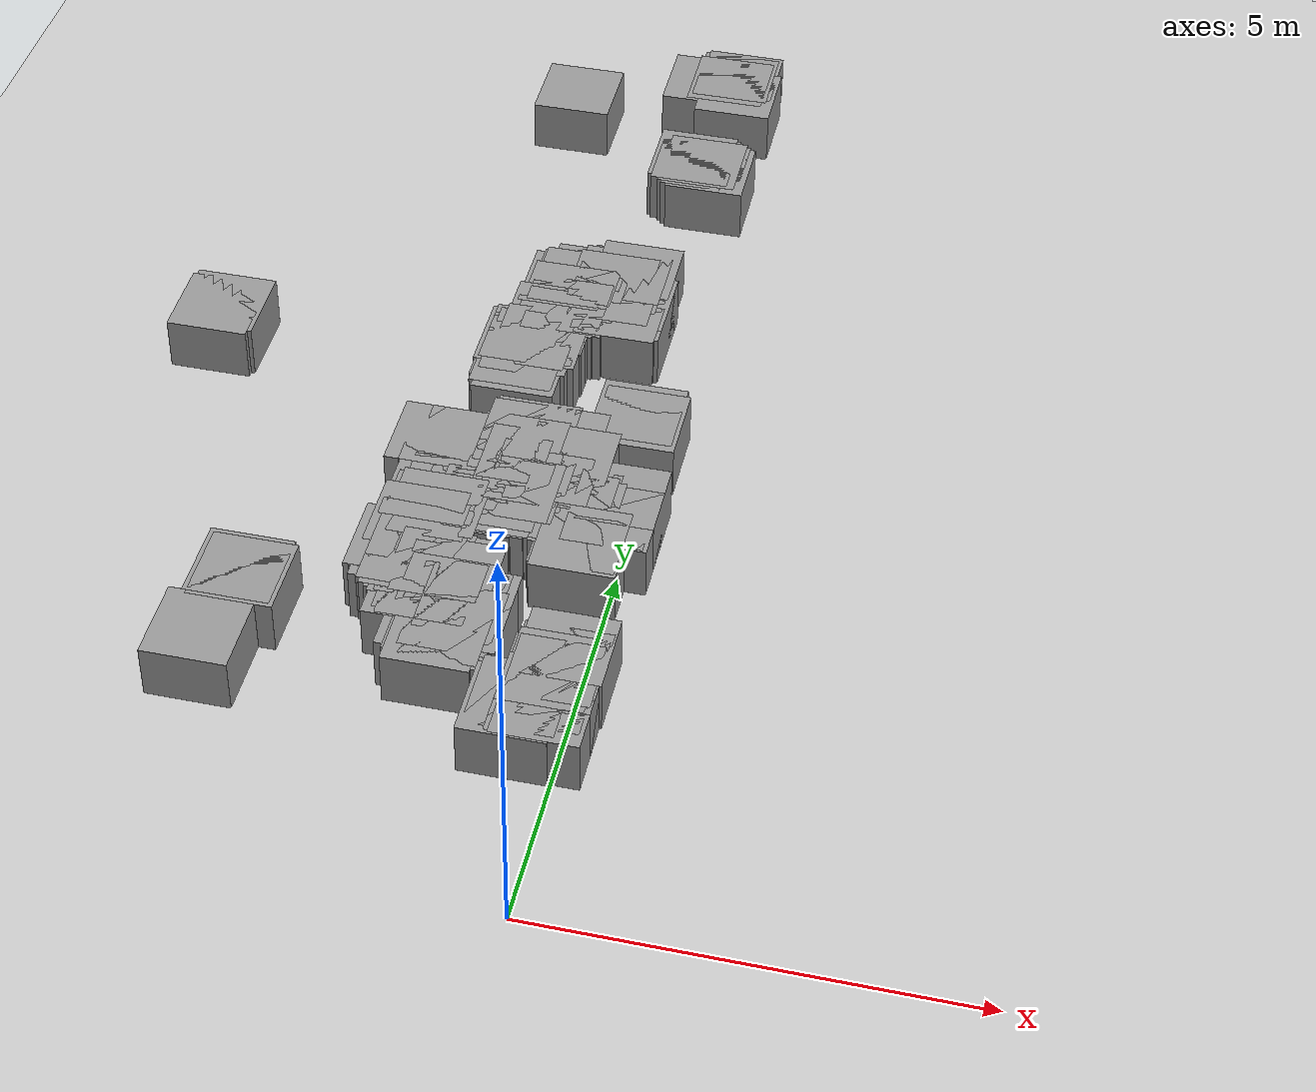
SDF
<sdf version="1.7">
 <world name="default">
  <model name="ground_plane">
   <static>1</static>
   <link name="link">
    <collision name="collision">
     <geometry><plane><normal>0 0 1</normal><size>100 100</size></plane></geometry>
     <surface>
      <contact><collide_bitmask>65535</collide_bitmask></contact>
      <friction><ode><mu>100</mu><mu2>50</mu2></ode></friction>
     </surface>
    </collision>
    <visual name="visual">
     <cast_shadows>0</cast_shadows>
     <geometry><plane><normal>0 0 1</normal><size>100 100</size></plane></geometry>
     <material>
      <script><uri>file://media/materials/scripts/gazebo.material</uri><name>Gazebo/Grey</name></script>
     </material>
    </visual>
   </link>
  </model>
  <include>
   <uri>model://unit_box</uri>
   <name>map_box_0</name>
   <pose>-0.39281 14.22254 0.15000 0.00000 0.00000 0.00000</pose>
   <scale>0.05000 0.05000 0.80000</scale>
  </include>
  <include>
   <uri>model://unit_box</uri>
   <name>map_box_1</name>
   <pose>-0.44281 14.17254 0.15000 0.00000 0.00000 0.00000</pose>
   <scale>0.05000 0.05000 0.80000</scale>
  </include>
  <include>
   <uri>model://unit_box</uri>
   <name>map_box_2</name>
   <pose>-0.49281 14.07254 0.15000 0.00000 0.00000 0.00000</pose>
   <scale>0.05000 0.05000 0.80000</scale>
  </include>
  <include>
   <uri>model://unit_box</uri>
   <name>map_box_3</name>
   <pose>-0.81781 14.02254 0.15000 0.00000 0.00000 0.00000</pose>
   <scale>0.10000 0.05000 0.80000</scale>
  </include>
  <include>
   <uri>model://unit_box</uri>
   <name>map_box_4</name>
   <pose>-0.34281 13.82254 0.15000 0.00000 0.00000 0.00000</pose>
   <scale>0.05000 0.05000 0.80000</scale>
  </include>
  <include>
   <uri>model://unit_box</uri>
   <name>map_box_5</name>
   <pose>-2.44281 13.42254 0.15000 0.00000 0.00000 0.00000</pose>
   <scale>0.05000 0.05000 0.80000</scale>
  </include>
  <include>
   <uri>model://unit_box</uri>
   <name>map_box_6</name>
   <pose>-0.64281 12.27254 0.15000 0.00000 0.00000 0.00000</pose>
   <scale>0.05000 0.05000 0.80000</scale>
  </include>
  <include>
   <uri>model://unit_box</uri>
   <name>map_box_7</name>
   <pose>-0.59281 12.22254 0.15000 0.00000 0.00000 0.00000</pose>
   <scale>0.05000 0.05000 0.80000</scale>
  </include>
  <include>
   <uri>model://unit_box</uri>
   <name>map_box_8</name>
   <pose>-0.49281 12.17254 0.15000 0.00000 0.00000 0.00000</pose>
   <scale>0.15000 0.05000 0.80000</scale>
  </include>
  <include>
   <uri>model://unit_box</uri>
   <name>map_box_9</name>
   <pose>-0.44281 12.12254 0.15000 0.00000 0.00000 0.00000</pose>
   <scale>0.05000 0.05000 0.80000</scale>
  </include>
  <include>
   <uri>model://unit_box</uri>
   <name>map_box_10</name>
   <pose>-0.36781 12.07254 0.15000 0.00000 0.00000 0.00000</pose>
   <scale>0.10000 0.05000 0.80000</scale>
  </include>
  <include>
   <uri>model://unit_box</uri>
   <name>map_box_11</name>
   <pose>-0.84281 9.77254 0.15000 0.00000 0.00000 0.00000</pose>
   <scale>0.15000 0.05000 0.80000</scale>
  </include>
  <include>
   <uri>model://unit_box</uri>
   <name>map_box_12</name>
   <pose>-1.39281 9.57254 0.15000 0.00000 0.00000 0.00000</pose>
   <scale>0.05000 0.25000 0.80000</scale>
  </include>
  <include>
   <uri>model://unit_box</uri>
   <name>map_box_13</name>
   <pose>-0.94281 9.64754 0.15000 0.00000 0.00000 0.00000</pose>
   <scale>0.05000 0.10000 0.80000</scale>
  </include>
  <include>
   <uri>model://unit_box</uri>
   <name>map_box_14</name>
   <pose>-1.04281 9.62254 0.15000 0.00000 0.00000 0.00000</pose>
   <scale>0.15000 0.05000 0.80000</scale>
  </include>
  <include>
   <uri>model://unit_box</uri>
   <name>map_box_15</name>
   <pose>-1.09281 9.52254 0.15000 0.00000 0.00000 0.00000</pose>
   <scale>0.05000 0.15000 0.80000</scale>
  </include>
  <include>
   <uri>model://unit_box</uri>
   <name>map_box_16</name>
   <pose>-1.14281 9.49754 0.15000 0.00000 0.00000 0.00000</pose>
   <scale>0.05000 0.10000 0.80000</scale>
  </include>
  <include>
   <uri>model://unit_box</uri>
   <name>map_box_17</name>
   <pose>-1.04281 9.47254 0.15000 0.00000 0.00000 0.00000</pose>
   <scale>0.05000 0.15000 0.80000</scale>
  </include>
  <include>
   <uri>model://unit_box</uri>
   <name>map_box_18</name>
   <pose>-1.51781 9.47254 0.15000 0.00000 0.00000 0.00000</pose>
   <scale>0.20000 0.05000 0.80000</scale>
  </include>
  <include>
   <uri>model://unit_box</uri>
   <name>map_box_19</name>
   <pose>-1.54281 9.42254 0.15000 0.00000 0.00000 0.00000</pose>
   <scale>0.05000 0.05000 0.80000</scale>
  </include>
  <include>
   <uri>model://unit_box</uri>
   <name>map_box_20</name>
   <pose>-1.64281 9.37254 0.15000 0.00000 0.00000 0.00000</pose>
   <scale>0.05000 0.05000 0.80000</scale>
  </include>
  <include>
   <uri>model://unit_box</uri>
   <name>map_box_21</name>
   <pose>-1.59281 9.29754 0.15000 0.00000 0.00000 0.00000</pose>
   <scale>0.05000 0.10000 0.80000</scale>
  </include>
  <include>
   <uri>model://unit_box</uri>
   <name>map_box_22</name>
   <pose>-0.99281 9.22254 0.15000 0.00000 0.00000 0.00000</pose>
   <scale>0.05000 0.05000 0.80000</scale>
  </include>
  <include>
   <uri>model://unit_box</uri>
   <name>map_box_23</name>
   <pose>-1.59281 9.17254 0.15000 0.00000 0.00000 0.00000</pose>
   <scale>0.05000 0.05000 0.80000</scale>
  </include>
  <include>
   <uri>model://unit_box</uri>
   <name>map_box_24</name>
   <pose>-0.79281 9.17254 0.15000 0.00000 0.00000 0.00000</pose>
   <scale>0.05000 0.05000 0.80000</scale>
  </include>
  <include>
   <uri>model://unit_box</uri>
   <name>map_box_25</name>
   <pose>-0.94281 9.12254 0.15000 0.00000 0.00000 0.00000</pose>
   <scale>0.05000 0.05000 0.80000</scale>
  </include>
  <include>
   <uri>model://unit_box</uri>
   <name>map_box_26</name>
   <pose>-1.46781 9.07254 0.15000 0.00000 0.00000 0.00000</pose>
   <scale>0.10000 0.05000 0.80000</scale>
  </include>
  <include>
   <uri>model://unit_box</uri>
   <name>map_box_27</name>
   <pose>-0.86781 9.07254 0.15000 0.00000 0.00000 0.00000</pose>
   <scale>0.10000 0.05000 0.80000</scale>
  </include>
  <include>
   <uri>model://unit_box</uri>
   <name>map_box_28</name>
   <pose>-1.59281 8.99754 0.15000 0.00000 0.00000 0.00000</pose>
   <scale>0.05000 0.10000 0.80000</scale>
  </include>
  <include>
   <uri>model://unit_box</uri>
   <name>map_box_29</name>
   <pose>-0.89281 8.99754 0.15000 0.00000 0.00000 0.00000</pose>
   <scale>0.05000 0.10000 0.80000</scale>
  </include>
  <include>
   <uri>model://unit_box</uri>
   <name>map_box_30</name>
   <pose>-0.79281 8.97254 0.15000 0.00000 0.00000 0.00000</pose>
   <scale>0.05000 0.05000 0.80000</scale>
  </include>
  <include>
   <uri>model://unit_box</uri>
   <name>map_box_31</name>
   <pose>-1.54281 8.89754 0.15000 0.00000 0.00000 0.00000</pose>
   <scale>0.05000 0.10000 0.80000</scale>
  </include>
  <include>
   <uri>model://unit_box</uri>
   <name>map_box_32</name>
   <pose>-0.84281 8.92254 0.15000 0.00000 0.00000 0.00000</pose>
   <scale>0.05000 0.05000 0.80000</scale>
  </include>
  <include>
   <uri>model://unit_box</uri>
   <name>map_box_33</name>
   <pose>-1.59281 8.84754 0.15000 0.00000 0.00000 0.00000</pose>
   <scale>0.05000 0.10000 0.80000</scale>
  </include>
  <include>
   <uri>model://unit_box</uri>
   <name>map_box_34</name>
   <pose>-1.49281 8.87254 0.15000 0.00000 0.00000 0.00000</pose>
   <scale>0.05000 0.05000 0.80000</scale>
  </include>
  <include>
   <uri>model://unit_box</uri>
   <name>map_box_35</name>
   <pose>-1.64281 8.74754 0.15000 0.00000 0.00000 0.00000</pose>
   <scale>0.05000 0.10000 0.80000</scale>
  </include>
  <include>
   <uri>model://unit_box</uri>
   <name>map_box_36</name>
   <pose>-1.69281 8.72254 0.15000 0.00000 0.00000 0.00000</pose>
   <scale>0.05000 0.05000 0.80000</scale>
  </include>
  <include>
   <uri>model://unit_box</uri>
   <name>map_box_37</name>
   <pose>-1.64281 8.49754 0.15000 0.00000 0.00000 0.00000</pose>
   <scale>0.05000 0.30000 0.80000</scale>
  </include>
  <include>
   <uri>model://unit_box</uri>
   <name>map_box_38</name>
   <pose>-1.71781 8.27254 0.15000 0.00000 0.00000 0.00000</pose>
   <scale>0.30000 0.05000 0.80000</scale>
  </include>
  <include>
   <uri>model://unit_box</uri>
   <name>map_box_39</name>
   <pose>-1.84281 8.22254 0.15000 0.00000 0.00000 0.00000</pose>
   <scale>0.15000 0.05000 0.80000</scale>
  </include>
  <include>
   <uri>model://unit_box</uri>
   <name>map_box_40</name>
   <pose>-1.66781 8.22254 0.15000 0.00000 0.00000 0.00000</pose>
   <scale>0.10000 0.05000 0.80000</scale>
  </include>
  <include>
   <uri>model://unit_box</uri>
   <name>map_box_41</name>
   <pose>-1.89281 8.17254 0.15000 0.00000 0.00000 0.00000</pose>
   <scale>0.05000 0.05000 0.80000</scale>
  </include>
  <include>
   <uri>model://unit_box</uri>
   <name>map_box_42</name>
   <pose>-1.79281 8.17254 0.15000 0.00000 0.00000 0.00000</pose>
   <scale>0.05000 0.05000 0.80000</scale>
  </include>
  <include>
   <uri>model://unit_box</uri>
   <name>map_box_43</name>
   <pose>-5.64281 8.02254 0.15000 0.00000 0.00000 0.00000</pose>
   <scale>0.05000 0.15000 0.80000</scale>
  </include>
  <include>
   <uri>model://unit_box</uri>
   <name>map_box_44</name>
   <pose>-1.84281 8.07254 0.15000 0.00000 0.00000 0.00000</pose>
   <scale>0.05000 0.05000 0.80000</scale>
  </include>
  <include>
   <uri>model://unit_box</uri>
   <name>map_box_45</name>
   <pose>-1.74281 8.07254 0.15000 0.00000 0.00000 0.00000</pose>
   <scale>0.05000 0.05000 0.80000</scale>
  </include>
  <include>
   <uri>model://unit_box</uri>
   <name>map_box_46</name>
   <pose>-1.79281 8.02254 0.15000 0.00000 0.00000 0.00000</pose>
   <scale>0.05000 0.05000 0.80000</scale>
  </include>
  <include>
   <uri>model://unit_box</uri>
   <name>map_box_47</name>
   <pose>-5.69281 7.94754 0.15000 0.00000 0.00000 0.00000</pose>
   <scale>0.05000 0.10000 0.80000</scale>
  </include>
  <include>
   <uri>model://unit_box</uri>
   <name>map_box_48</name>
   <pose>-1.86781 7.87254 0.15000 0.00000 0.00000 0.00000</pose>
   <scale>0.10000 0.05000 0.80000</scale>
  </include>
  <include>
   <uri>model://unit_box</uri>
   <name>map_box_49</name>
   <pose>-1.84281 7.77254 0.15000 0.00000 0.00000 0.00000</pose>
   <scale>0.05000 0.05000 0.80000</scale>
  </include>
  <include>
   <uri>model://unit_box</uri>
   <name>map_box_50</name>
   <pose>-1.79281 7.67254 0.15000 0.00000 0.00000 0.00000</pose>
   <scale>0.05000 0.05000 0.80000</scale>
  </include>
  <include>
   <uri>model://unit_box</uri>
   <name>map_box_51</name>
   <pose>-0.24281 7.14754 0.15000 0.00000 0.00000 0.00000</pose>
   <scale>0.05000 0.10000 0.80000</scale>
  </include>
  <include>
   <uri>model://unit_box</uri>
   <name>map_box_52</name>
   <pose>-0.19281 7.04754 0.15000 0.00000 0.00000 0.00000</pose>
   <scale>0.05000 0.20000 0.80000</scale>
  </include>
  <include>
   <uri>model://unit_box</uri>
   <name>map_box_57</name>
   <pose>-1.39281 6.57254 0.15000 0.00000 0.00000 0.00000</pose>
   <scale>0.05000 0.05000 0.80000</scale>
  </include>
  <include>
   <uri>model://unit_box</uri>
   <name>map_box_58</name>
   <pose>-1.44281 6.52254 0.15000 0.00000 0.00000 0.00000</pose>
   <scale>0.05000 0.05000 0.80000</scale>
  </include>
  <include>
   <uri>model://unit_box</uri>
   <name>map_box_59</name>
   <pose>-1.04281 6.52254 0.15000 0.00000 0.00000 0.00000</pose>
   <scale>0.05000 0.05000 0.80000</scale>
  </include>
  <include>
   <uri>model://unit_box</uri>
   <name>map_box_60</name>
   <pose>-0.94281 6.47254 0.15000 0.00000 0.00000 0.00000</pose>
   <scale>0.05000 0.05000 0.80000</scale>
  </include>
  <include>
   <uri>model://unit_box</uri>
   <name>map_box_62</name>
   <pose>-1.44281 6.42254 0.15000 0.00000 0.00000 0.00000</pose>
   <scale>0.05000 0.05000 0.80000</scale>
  </include>
  <include>
   <uri>model://unit_box</uri>
   <name>map_box_63</name>
   <pose>-0.94281 6.27254 0.15000 0.00000 0.00000 0.00000</pose>
   <scale>0.05000 0.25000 0.80000</scale>
  </include>
  <include>
   <uri>model://unit_box</uri>
   <name>map_box_64</name>
   <pose>-0.89281 6.14754 0.15000 0.00000 0.00000 0.00000</pose>
   <scale>0.05000 0.40000 0.80000</scale>
  </include>
  <include>
   <uri>model://unit_box</uri>
   <name>map_box_65</name>
   <pose>-1.46781 6.27254 0.15000 0.00000 0.00000 0.00000</pose>
   <scale>0.10000 0.05000 0.80000</scale>
  </include>
  <include>
   <uri>model://unit_box</uri>
   <name>map_box_66</name>
   <pose>-2.44281 6.22254 0.15000 0.00000 0.00000 0.00000</pose>
   <scale>0.05000 0.05000 0.80000</scale>
  </include>
  <include>
   <uri>model://unit_box</uri>
   <name>map_box_67</name>
   <pose>-2.26781 6.22254 0.15000 0.00000 0.00000 0.00000</pose>
   <scale>0.10000 0.05000 0.80000</scale>
  </include>
  <include>
   <uri>model://unit_box</uri>
   <name>map_box_68</name>
   <pose>-2.11781 6.22254 0.15000 0.00000 0.00000 0.00000</pose>
   <scale>0.10000 0.05000 0.80000</scale>
  </include>
  <include>
   <uri>model://unit_box</uri>
   <name>map_box_69</name>
   <pose>-1.41781 6.22254 0.15000 0.00000 0.00000 0.00000</pose>
   <scale>0.10000 0.05000 0.80000</scale>
  </include>
  <include>
   <uri>model://unit_box</uri>
   <name>map_box_70</name>
   <pose>-0.84281 6.22254 0.15000 0.00000 0.00000 0.00000</pose>
   <scale>0.05000 0.05000 0.80000</scale>
  </include>
  <include>
   <uri>model://unit_box</uri>
   <name>map_box_71</name>
   <pose>-1.99281 6.17254 0.15000 0.00000 0.00000 0.00000</pose>
   <scale>0.05000 0.05000 0.80000</scale>
  </include>
  <include>
   <uri>model://unit_box</uri>
   <name>map_box_72</name>
   <pose>-1.71781 6.14754 0.15000 0.00000 0.00000 0.00000</pose>
   <scale>0.10000 0.10000 0.80000</scale>
  </include>
  <include>
   <uri>model://unit_box</uri>
   <name>map_box_73</name>
   <pose>-1.44281 6.04754 0.15000 0.00000 0.00000 0.00000</pose>
   <scale>0.05000 0.30000 0.80000</scale>
  </include>
  <include>
   <uri>model://unit_box</uri>
   <name>map_box_74</name>
   <pose>-1.51781 6.09754 0.15000 0.00000 0.00000 0.00000</pose>
   <scale>0.10000 0.10000 0.80000</scale>
  </include>
  <include>
   <uri>model://unit_box</uri>
   <name>map_box_75</name>
   <pose>-1.39281 6.04754 0.15000 0.00000 0.00000 0.00000</pose>
   <scale>0.05000 0.20000 0.80000</scale>
  </include>
  <include>
   <uri>model://unit_box</uri>
   <name>map_box_77</name>
   <pose>-1.61781 6.07254 0.15000 0.00000 0.00000 0.00000</pose>
   <scale>0.10000 0.05000 0.80000</scale>
  </include>
  <include>
   <uri>model://unit_box</uri>
   <name>map_box_78</name>
   <pose>-1.34281 6.07254 0.15000 0.00000 0.00000 0.00000</pose>
   <scale>0.05000 0.05000 0.80000</scale>
  </include>
  <include>
   <uri>model://unit_box</uri>
   <name>map_box_79</name>
   <pose>-1.19281 5.87254 0.15000 0.00000 0.00000 0.00000</pose>
   <scale>0.05000 0.45000 0.80000</scale>
  </include>
  <include>
   <uri>model://unit_box</uri>
   <name>map_box_93</name>
   <pose>-1.26781 6.02254 0.15000 0.00000 0.00000 0.00000</pose>
   <scale>0.10000 0.05000 0.80000</scale>
  </include>
  <include>
   <uri>model://unit_box</uri>
   <name>map_box_94</name>
   <pose>-1.04281 6.02254 0.15000 0.00000 0.00000 0.00000</pose>
   <scale>0.25000 0.05000 0.80000</scale>
  </include>
  <include>
   <uri>model://unit_box</uri>
   <name>map_box_114</name>
   <pose>-1.59281 5.92254 0.15000 0.00000 0.00000 0.00000</pose>
   <scale>0.05000 0.15000 0.80000</scale>
  </include>
  <include>
   <uri>model://unit_box</uri>
   <name>map_box_115</name>
   <pose>-1.49281 5.97254 0.15000 0.00000 0.00000 0.00000</pose>
   <scale>0.05000 0.05000 0.80000</scale>
  </include>
  <include>
   <uri>model://unit_box</uri>
   <name>map_box_116</name>
   <pose>-1.24281 5.97254 0.15000 0.00000 0.00000 0.00000</pose>
   <scale>0.05000 0.05000 0.80000</scale>
  </include>
  <include>
   <uri>model://unit_box</uri>
   <name>map_box_117</name>
   <pose>-1.14281 5.84754 0.15000 0.00000 0.00000 0.00000</pose>
   <scale>0.05000 0.30000 0.80000</scale>
  </include>
  <include>
   <uri>model://unit_box</uri>
   <name>map_box_118</name>
   <pose>-0.99281 5.97254 0.15000 0.00000 0.00000 0.00000</pose>
   <scale>0.15000 0.05000 0.80000</scale>
  </include>
  <include>
   <uri>model://unit_box</uri>
   <name>map_box_129</name>
   <pose>-0.96781 5.92254 0.15000 0.00000 0.00000 0.00000</pose>
   <scale>0.10000 0.05000 0.80000</scale>
  </include>
  <include>
   <uri>model://unit_box</uri>
   <name>map_box_138</name>
   <pose>-1.54281 5.87254 0.15000 0.00000 0.00000 0.00000</pose>
   <scale>0.05000 0.05000 0.80000</scale>
  </include>
  <include>
   <uri>model://unit_box</uri>
   <name>map_box_139</name>
   <pose>-1.34281 5.87254 0.15000 0.00000 0.00000 0.00000</pose>
   <scale>0.15000 0.05000 0.80000</scale>
  </include>
  <include>
   <uri>model://unit_box</uri>
   <name>map_box_140</name>
   <pose>-1.09281 5.82254 0.15000 0.00000 0.00000 0.00000</pose>
   <scale>0.05000 0.15000 0.80000</scale>
  </include>
  <include>
   <uri>model://unit_box</uri>
   <name>map_box_141</name>
   <pose>-0.94281 5.87254 0.15000 0.00000 0.00000 0.00000</pose>
   <scale>0.05000 0.05000 0.80000</scale>
  </include>
  <include>
   <uri>model://unit_box</uri>
   <name>map_box_147</name>
   <pose>-1.49281 5.79754 0.15000 0.00000 0.00000 0.00000</pose>
   <scale>0.05000 0.10000 0.80000</scale>
  </include>
  <include>
   <uri>model://unit_box</uri>
   <name>map_box_148</name>
   <pose>-1.31781 5.82254 0.15000 0.00000 0.00000 0.00000</pose>
   <scale>0.10000 0.05000 0.80000</scale>
  </include>
  <include>
   <uri>model://unit_box</uri>
   <name>map_box_153</name>
   <pose>-1.54281 5.77254 0.15000 0.00000 0.00000 0.00000</pose>
   <scale>0.05000 0.05000 0.80000</scale>
  </include>
  <include>
   <uri>model://unit_box</uri>
   <name>map_box_154</name>
   <pose>-1.41781 5.72254 0.15000 0.00000 0.00000 0.00000</pose>
   <scale>0.10000 0.15000 0.80000</scale>
  </include>
  <include>
   <uri>model://unit_box</uri>
   <name>map_box_155</name>
   <pose>-1.24281 5.74754 0.15000 0.00000 0.00000 0.00000</pose>
   <scale>0.05000 0.10000 0.80000</scale>
  </include>
  <include>
   <uri>model://unit_box</uri>
   <name>map_box_156</name>
   <pose>-1.04281 5.72254 0.15000 0.00000 0.00000 0.00000</pose>
   <scale>0.05000 0.15000 0.80000</scale>
  </include>
  <include>
   <uri>model://unit_box</uri>
   <name>map_box_157</name>
   <pose>-0.84281 5.77254 0.15000 0.00000 0.00000 0.00000</pose>
   <scale>0.05000 0.05000 0.80000</scale>
  </include>
  <include>
   <uri>model://unit_box</uri>
   <name>map_box_160</name>
   <pose>-1.71781 5.72254 0.15000 0.00000 0.00000 0.00000</pose>
   <scale>0.10000 0.05000 0.80000</scale>
  </include>
  <include>
   <uri>model://unit_box</uri>
   <name>map_box_161</name>
   <pose>-1.29281 5.69754 0.15000 0.00000 0.00000 0.00000</pose>
   <scale>0.05000 0.10000 0.80000</scale>
  </include>
  <include>
   <uri>model://unit_box</uri>
   <name>map_box_162</name>
   <pose>-0.14281 5.72254 0.15000 0.00000 0.00000 0.00000</pose>
   <scale>0.05000 0.05000 0.80000</scale>
  </include>
  <include>
   <uri>model://unit_box</uri>
   <name>map_box_163</name>
   <pose>-1.66781 5.67254 0.15000 0.00000 0.00000 0.00000</pose>
   <scale>0.10000 0.05000 0.80000</scale>
  </include>
  <include>
   <uri>model://unit_box</uri>
   <name>map_box_164</name>
   <pose>-1.09281 5.67254 0.15000 0.00000 0.00000 0.00000</pose>
   <scale>0.05000 0.05000 0.80000</scale>
  </include>
  <include>
   <uri>model://unit_box</uri>
   <name>map_box_168</name>
   <pose>-1.56781 5.62254 0.15000 0.00000 0.00000 0.00000</pose>
   <scale>0.20000 0.05000 0.80000</scale>
  </include>
  <include>
   <uri>model://unit_box</uri>
   <name>map_box_169</name>
   <pose>-1.34281 5.54754 0.15000 0.00000 0.00000 0.00000</pose>
   <scale>0.05000 0.20000 0.80000</scale>
  </include>
  <include>
   <uri>model://unit_box</uri>
   <name>map_box_170</name>
   <pose>-1.14281 5.62254 0.15000 0.00000 0.00000 0.00000</pose>
   <scale>0.05000 0.05000 0.80000</scale>
  </include>
  <include>
   <uri>model://unit_box</uri>
   <name>map_box_172</name>
   <pose>-1.56781 5.57254 0.15000 0.00000 0.00000 0.00000</pose>
   <scale>0.10000 0.05000 0.80000</scale>
  </include>
  <include>
   <uri>model://unit_box</uri>
   <name>map_box_173</name>
   <pose>-1.29281 5.54754 0.15000 0.00000 0.00000 0.00000</pose>
   <scale>0.05000 0.10000 0.80000</scale>
  </include>
  <include>
   <uri>model://unit_box</uri>
   <name>map_box_174</name>
   <pose>-0.74281 5.57254 0.15000 0.00000 0.00000 0.00000</pose>
   <scale>0.05000 0.05000 0.80000</scale>
  </include>
  <include>
   <uri>model://unit_box</uri>
   <name>map_box_177</name>
   <pose>-1.46781 5.52254 0.15000 0.00000 0.00000 0.00000</pose>
   <scale>0.20000 0.05000 0.80000</scale>
  </include>
  <include>
   <uri>model://unit_box</uri>
   <name>map_box_178</name>
   <pose>-0.66781 5.52254 0.15000 0.00000 0.00000 0.00000</pose>
   <scale>0.10000 0.05000 0.80000</scale>
  </include>
  <include>
   <uri>model://unit_box</uri>
   <name>map_box_180</name>
   <pose>-1.49281 5.44754 0.15000 0.00000 0.00000 0.00000</pose>
   <scale>0.15000 0.10000 0.80000</scale>
  </include>
  <include>
   <uri>model://unit_box</uri>
   <name>map_box_181</name>
   <pose>-0.69281 5.47254 0.15000 0.00000 0.00000 0.00000</pose>
   <scale>0.05000 0.05000 0.80000</scale>
  </include>
  <include>
   <uri>model://unit_box</uri>
   <name>map_box_183</name>
   <pose>-2.16781 5.32254 0.15000 0.00000 0.00000 0.00000</pose>
   <scale>0.10000 0.25000 0.80000</scale>
  </include>
  <include>
   <uri>model://unit_box</uri>
   <name>map_box_184</name>
   <pose>-1.39281 5.42254 0.15000 0.00000 0.00000 0.00000</pose>
   <scale>0.05000 0.05000 0.80000</scale>
  </include>
  <include>
   <uri>model://unit_box</uri>
   <name>map_box_185</name>
   <pose>-0.59281 5.39754 0.15000 0.00000 0.00000 0.00000</pose>
   <scale>0.05000 0.10000 0.80000</scale>
  </include>
  <include>
   <uri>model://unit_box</uri>
   <name>map_box_186</name>
   <pose>-0.19281 5.37254 0.15000 0.00000 0.00000 0.00000</pose>
   <scale>0.05000 0.15000 0.80000</scale>
  </include>
  <include>
   <uri>model://unit_box</uri>
   <name>map_box_190</name>
   <pose>-2.09281 5.37254 0.15000 0.00000 0.00000 0.00000</pose>
   <scale>0.05000 0.05000 0.80000</scale>
  </include>
  <include>
   <uri>model://unit_box</uri>
   <name>map_box_191</name>
   <pose>-1.99281 5.37254 0.15000 0.00000 0.00000 0.00000</pose>
   <scale>0.05000 0.05000 0.80000</scale>
  </include>
  <include>
   <uri>model://unit_box</uri>
   <name>map_box_192</name>
   <pose>-1.46781 5.37254 0.15000 0.00000 0.00000 0.00000</pose>
   <scale>0.10000 0.05000 0.80000</scale>
  </include>
  <include>
   <uri>model://unit_box</uri>
   <name>map_box_193</name>
   <pose>-0.14281 5.34754 0.15000 0.00000 0.00000 0.00000</pose>
   <scale>0.05000 0.10000 0.80000</scale>
  </include>
  <include>
   <uri>model://unit_box</uri>
   <name>map_box_199</name>
   <pose>-2.24281 5.29754 0.15000 0.00000 0.00000 0.00000</pose>
   <scale>0.05000 0.10000 0.80000</scale>
  </include>
  <include>
   <uri>model://unit_box</uri>
   <name>map_box_200</name>
   <pose>-1.89281 5.29754 0.15000 0.00000 0.00000 0.00000</pose>
   <scale>0.05000 0.10000 0.80000</scale>
  </include>
  <include>
   <uri>model://unit_box</uri>
   <name>map_box_201</name>
   <pose>-1.49281 5.27254 0.15000 0.00000 0.00000 0.00000</pose>
   <scale>0.05000 0.15000 0.80000</scale>
  </include>
  <include>
   <uri>model://unit_box</uri>
   <name>map_box_202</name>
   <pose>-0.54281 5.29754 0.15000 0.00000 0.00000 0.00000</pose>
   <scale>0.05000 0.10000 0.80000</scale>
  </include>
  <include>
   <uri>model://unit_box</uri>
   <name>map_box_204</name>
   <pose>-1.84281 5.27254 0.15000 0.00000 0.00000 0.00000</pose>
   <scale>0.05000 0.05000 0.80000</scale>
  </include>
  <include>
   <uri>model://unit_box</uri>
   <name>map_box_205</name>
   <pose>-1.66781 5.27254 0.15000 0.00000 0.00000 0.00000</pose>
   <scale>0.10000 0.05000 0.80000</scale>
  </include>
  <include>
   <uri>model://unit_box</uri>
   <name>map_box_206</name>
   <pose>-1.54281 5.24754 0.15000 0.00000 0.00000 0.00000</pose>
   <scale>0.05000 0.10000 0.80000</scale>
  </include>
  <include>
   <uri>model://unit_box</uri>
   <name>map_box_207</name>
   <pose>-0.49281 5.24754 0.15000 0.00000 0.00000 0.00000</pose>
   <scale>0.05000 0.10000 0.80000</scale>
  </include>
  <include>
   <uri>model://unit_box</uri>
   <name>map_box_210</name>
   <pose>-2.09281 5.12254 0.15000 0.00000 0.00000 0.00000</pose>
   <scale>0.05000 0.25000 0.80000</scale>
  </include>
  <include>
   <uri>model://unit_box</uri>
   <name>map_box_211</name>
   <pose>-1.69281 5.22254 0.15000 0.00000 0.00000 0.00000</pose>
   <scale>0.05000 0.05000 0.80000</scale>
  </include>
  <include>
   <uri>model://unit_box</uri>
   <name>map_box_212</name>
   <pose>-2.14281 5.09754 0.15000 0.00000 0.00000 0.00000</pose>
   <scale>0.05000 0.20000 0.80000</scale>
  </include>
  <include>
   <uri>model://unit_box</uri>
   <name>map_box_215</name>
   <pose>-2.19281 5.04754 0.15000 0.00000 0.00000 0.00000</pose>
   <scale>0.05000 0.20000 0.80000</scale>
  </include>
  <include>
   <uri>model://unit_box</uri>
   <name>map_box_218</name>
   <pose>-2.24281 4.64754 0.15000 0.00000 0.00000 0.00000</pose>
   <scale>0.05000 0.90000 0.80000</scale>
  </include>
  <include>
   <uri>model://unit_box</uri>
   <name>map_box_222</name>
   <pose>-2.29281 4.84754 0.15000 0.00000 0.00000 0.00000</pose>
   <scale>0.05000 0.40000 0.80000</scale>
  </include>
  <include>
   <uri>model://unit_box</uri>
   <name>map_box_225</name>
   <pose>-0.41781 4.92254 0.15000 0.00000 0.00000 0.00000</pose>
   <scale>0.10000 0.05000 0.80000</scale>
  </include>
  <include>
   <uri>model://unit_box</uri>
   <name>map_box_227</name>
   <pose>-0.39281 4.87254 0.15000 0.00000 0.00000 0.00000</pose>
   <scale>0.05000 0.05000 0.80000</scale>
  </include>
  <include>
   <uri>model://unit_box</uri>
   <name>map_box_228</name>
   <pose>-2.19281 4.62254 0.15000 0.00000 0.00000 0.00000</pose>
   <scale>0.05000 0.35000 0.80000</scale>
  </include>
  <include>
   <uri>model://unit_box</uri>
   <name>map_box_229</name>
   <pose>-2.14281 4.59754 0.15000 0.00000 0.00000 0.00000</pose>
   <scale>0.05000 0.30000 0.80000</scale>
  </include>
  <include>
   <uri>model://unit_box</uri>
   <name>map_box_235</name>
   <pose>-2.31781 4.39754 0.15000 0.00000 0.00000 0.00000</pose>
   <scale>0.10000 0.20000 0.80000</scale>
  </include>
  <include>
   <uri>model://unit_box</uri>
   <name>map_box_236</name>
   <pose>-2.39281 4.42254 0.15000 0.00000 0.00000 0.00000</pose>
   <scale>0.05000 0.05000 0.80000</scale>
  </include>
  <include>
   <uri>model://unit_box</uri>
   <name>map_box_237</name>
   <pose>-2.19281 4.24754 0.15000 0.00000 0.00000 0.00000</pose>
   <scale>0.05000 0.30000 0.80000</scale>
  </include>
  <include>
   <uri>model://unit_box</uri>
   <name>map_box_238</name>
   <pose>-2.29281 4.27254 0.15000 0.00000 0.00000 0.00000</pose>
   <scale>0.05000 0.05000 0.80000</scale>
  </include>
  <include>
   <uri>model://unit_box</uri>
   <name>map_box_239</name>
   <pose>-2.14281 4.17254 0.15000 0.00000 0.00000 0.00000</pose>
   <scale>0.05000 0.25000 0.80000</scale>
  </include>
  <include>
   <uri>model://unit_box</uri>
   <name>map_box_240</name>
   <pose>-1.79281 4.14754 0.15000 0.00000 0.00000 0.00000</pose>
   <scale>0.05000 0.20000 0.80000</scale>
  </include>
  <include>
   <uri>model://unit_box</uri>
   <name>map_box_241</name>
   <pose>-2.04281 4.17254 0.15000 0.00000 0.00000 0.00000</pose>
   <scale>0.15000 0.05000 0.80000</scale>
  </include>
  <include>
   <uri>model://unit_box</uri>
   <name>map_box_242</name>
   <pose>-1.86781 4.14754 0.15000 0.00000 0.00000 0.00000</pose>
   <scale>0.10000 0.10000 0.80000</scale>
  </include>
  <include>
   <uri>model://unit_box</uri>
   <name>map_box_243</name>
   <pose>-1.74281 4.07254 0.15000 0.00000 0.00000 0.00000</pose>
   <scale>0.05000 0.25000 0.80000</scale>
  </include>
  <include>
   <uri>model://unit_box</uri>
   <name>map_box_244</name>
   <pose>-2.06781 4.12254 0.15000 0.00000 0.00000 0.00000</pose>
   <scale>0.10000 0.05000 0.80000</scale>
  </include>
  <include>
   <uri>model://unit_box</uri>
   <name>map_box_245</name>
   <pose>-1.94281 4.09754 0.15000 0.00000 0.00000 0.00000</pose>
   <scale>0.05000 0.10000 0.80000</scale>
  </include>
  <include>
   <uri>model://unit_box</uri>
   <name>map_box_246</name>
   <pose>-1.66781 4.07254 0.15000 0.00000 0.00000 0.00000</pose>
   <scale>0.10000 0.15000 0.80000</scale>
  </include>
  <include>
   <uri>model://unit_box</uri>
   <name>map_box_247</name>
   <pose>-2.01781 4.07254 0.15000 0.00000 0.00000 0.00000</pose>
   <scale>0.10000 0.05000 0.80000</scale>
  </include>
  <include>
   <uri>model://unit_box</uri>
   <name>map_box_248</name>
   <pose>-1.89281 4.07254 0.15000 0.00000 0.00000 0.00000</pose>
   <scale>0.05000 0.05000 0.80000</scale>
  </include>
  <include>
   <uri>model://unit_box</uri>
   <name>map_box_249</name>
   <pose>-1.81781 3.94754 0.15000 0.00000 0.00000 0.00000</pose>
   <scale>0.10000 0.10000 0.80000</scale>
  </include>
  <include>
   <uri>model://unit_box</uri>
   <name>map_box_250</name>
   <pose>-1.69281 3.97254 0.15000 0.00000 0.00000 0.00000</pose>
   <scale>0.05000 0.05000 0.80000</scale>
  </include>
  <include>
   <uri>model://unit_box</uri>
   <name>map_box_251</name>
   <pose>-1.89281 3.84754 0.15000 0.00000 0.00000 0.00000</pose>
   <scale>0.05000 0.20000 0.80000</scale>
  </include>
  <include>
   <uri>model://unit_box</uri>
   <name>map_box_253</name>
   <pose>-1.94281 3.82254 0.15000 0.00000 0.00000 0.00000</pose>
   <scale>0.05000 0.15000 0.80000</scale>
  </include>
  <include>
   <uri>model://unit_box</uri>
   <name>map_box_256</name>
   <pose>-1.99281 3.74754 0.15000 0.00000 0.00000 0.00000</pose>
   <scale>0.05000 0.20000 0.80000</scale>
  </include>
  <include>
   <uri>model://unit_box</uri>
   <name>map_box_257</name>
   <pose>-1.84281 3.77254 0.15000 0.00000 0.00000 0.00000</pose>
   <scale>0.05000 0.15000 0.80000</scale>
  </include>
  <include>
   <uri>model://unit_box</uri>
   <name>map_box_258</name>
   <pose>-1.66781 3.77254 0.15000 0.00000 0.00000 0.00000</pose>
   <scale>0.20000 0.15000 0.80000</scale>
  </include>
  <include>
   <uri>model://unit_box</uri>
   <name>map_box_261</name>
   <pose>-1.79281 3.74754 0.15000 0.00000 0.00000 0.00000</pose>
   <scale>0.05000 0.10000 0.80000</scale>
  </include>
  <include>
   <uri>model://unit_box</uri>
   <name>map_box_262</name>
   <pose>-1.49281 3.67254 0.15000 0.00000 0.00000 0.00000</pose>
   <scale>0.15000 0.25000 0.80000</scale>
  </include>
  <include>
   <uri>model://unit_box</uri>
   <name>map_box_264</name>
   <pose>-1.39281 3.67254 0.15000 0.00000 0.00000 0.00000</pose>
   <scale>0.05000 0.15000 0.80000</scale>
  </include>
  <include>
   <uri>model://unit_box</uri>
   <name>map_box_266</name>
   <pose>-1.69281 3.67254 0.15000 0.00000 0.00000 0.00000</pose>
   <scale>0.15000 0.05000 0.80000</scale>
  </include>
  <include>
   <uri>model://unit_box</uri>
   <name>map_box_268</name>
   <pose>-3.99281 3.62254 0.15000 0.00000 0.00000 0.00000</pose>
   <scale>0.05000 0.05000 0.80000</scale>
  </include>
  <include>
   <uri>model://unit_box</uri>
   <name>map_box_269</name>
   <pose>-1.59281 3.62254 0.15000 0.00000 0.00000 0.00000</pose>
   <scale>0.05000 0.05000 0.80000</scale>
  </include>
  <include>
   <uri>model://unit_box</uri>
   <name>map_box_273</name>
   <pose>-3.94281 3.57254 0.15000 0.00000 0.00000 0.00000</pose>
   <scale>0.05000 0.05000 0.80000</scale>
  </include>
  <include>
   <uri>model://unit_box</uri>
   <name>map_box_276</name>
   <pose>-1.46781 3.37254 0.15000 0.00000 0.00000 0.00000</pose>
   <scale>0.10000 0.35000 0.80000</scale>
  </include>
  <include>
   <uri>model://unit_box</uri>
   <name>map_box_279</name>
   <pose>-1.39281 3.44754 0.15000 0.00000 0.00000 0.00000</pose>
   <scale>0.05000 0.10000 0.80000</scale>
  </include>
  <include>
   <uri>model://unit_box</uri>
   <name>map_box_282</name>
   <pose>-1.54281 3.22254 0.15000 0.00000 0.00000 0.00000</pose>
   <scale>0.05000 0.35000 0.80000</scale>
  </include>
  <include>
   <uri>model://unit_box</uri>
   <name>map_box_283</name>
   <pose>-1.71781 3.32254 0.15000 0.00000 0.00000 0.00000</pose>
   <scale>0.10000 0.05000 0.80000</scale>
  </include>
  <include>
   <uri>model://unit_box</uri>
   <name>map_box_284</name>
   <pose>-1.61781 3.27254 0.15000 0.00000 0.00000 0.00000</pose>
   <scale>0.10000 0.05000 0.80000</scale>
  </include>
  <include>
   <uri>model://unit_box</uri>
   <name>map_box_285</name>
   <pose>-0.16781 3.24754 0.15000 0.00000 0.00000 0.00000</pose>
   <scale>0.10000 0.10000 0.80000</scale>
  </include>
  <include>
   <uri>model://unit_box</uri>
   <name>map_box_286</name>
   <pose>-1.59281 3.22254 0.15000 0.00000 0.00000 0.00000</pose>
   <scale>0.05000 0.05000 0.80000</scale>
  </include>
  <include>
   <uri>model://unit_box</uri>
   <name>map_box_289</name>
   <pose>-1.49281 3.17254 0.15000 0.00000 0.00000 0.00000</pose>
   <scale>0.05000 0.05000 0.80000</scale>
  </include>
  <include>
   <uri>model://unit_box</uri>
   <name>map_box_291</name>
   <pose>-1.59281 3.12254 0.15000 0.00000 0.00000 0.00000</pose>
   <scale>0.05000 0.05000 0.80000</scale>
  </include>
  <include>
   <uri>model://unit_box</uri>
   <name>map_box_292</name>
   <pose>-0.19281 3.02254 0.15000 0.00000 0.00000 0.00000</pose>
   <scale>0.05000 0.05000 0.80000</scale>
  </include>
  <include>
   <uri>model://unit_box</uri>
   <name>map_box_295</name>
   <pose>-0.21781 2.92254 0.15000 0.00000 0.00000 0.00000</pose>
   <scale>0.10000 0.05000 0.80000</scale>
  </include>
  <include>
   <uri>model://unit_box</uri>
   <name>map_box_297</name>
   <pose>-0.19281 2.82254 0.15000 0.00000 0.00000 0.00000</pose>
   <scale>0.05000 0.15000 0.80000</scale>
  </include>
  <include>
   <uri>model://unit_box</uri>
   <name>map_box_298</name>
   <pose>-0.24281 2.82254 0.15000 0.00000 0.00000 0.00000</pose>
   <scale>0.05000 0.05000 0.80000</scale>
  </include>
  <include>
   <uri>model://unit_box</uri>
   <name>map_box_302</name>
   <pose>-4.14281 2.62254 0.15000 0.00000 0.00000 0.00000</pose>
   <scale>0.05000 0.15000 0.80000</scale>
  </include>
  <include>
   <uri>model://unit_box</uri>
   <name>map_box_306</name>
   <pose>-0.24281 2.52254 0.15000 0.00000 0.00000 0.00000</pose>
   <scale>0.05000 0.05000 0.80000</scale>
  </include>
  <include>
   <uri>model://unit_box</uri>
   <name>map_box_319</name>
   <pose>-0.49281 2.42254 0.15000 0.00000 0.00000 0.00000</pose>
   <scale>0.05000 0.05000 0.80000</scale>
  </include>
  <include>
   <uri>model://unit_box</uri>
   <name>map_box_320</name>
   <pose>-0.24281 2.37254 0.15000 0.00000 0.00000 0.00000</pose>
   <scale>0.05000 0.15000 0.80000</scale>
  </include>
  <include>
   <uri>model://unit_box</uri>
   <name>map_box_328</name>
   <pose>-0.19281 2.34754 0.15000 0.00000 0.00000 0.00000</pose>
   <scale>0.05000 0.10000 0.80000</scale>
  </include>
  <include>
   <uri>model://unit_box</uri>
   <name>map_box_336</name>
   <pose>-0.54281 2.32254 0.15000 0.00000 0.00000 0.00000</pose>
   <scale>0.05000 0.05000 0.80000</scale>
  </include>
 </world>
</sdf>
